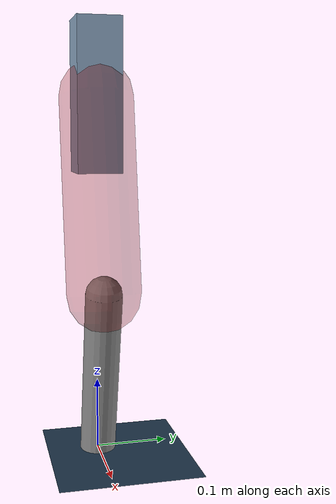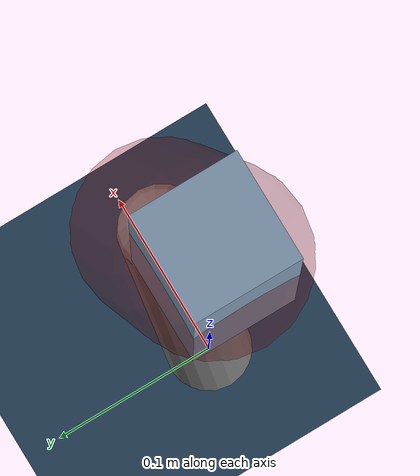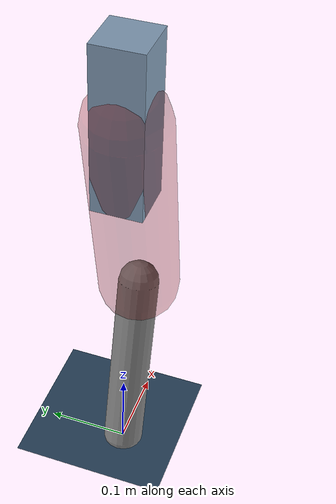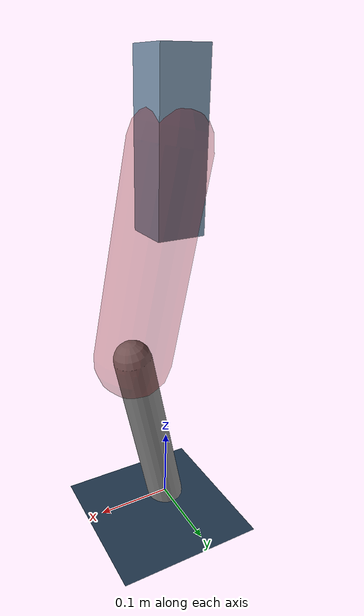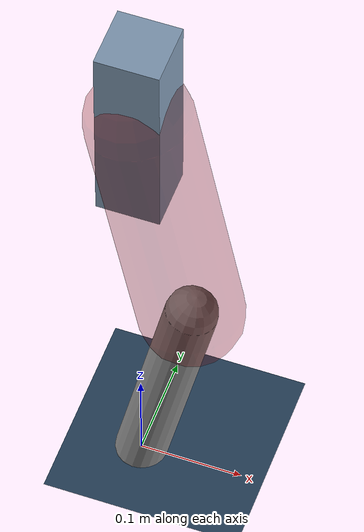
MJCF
<mujoco model="Hopper2D">
	<compiler inertiafromgeom="true" angle="radian" />
	<option timestep="0.001" integrator="implicit" cone="elliptic" solver="Newton" tolerance="1e-10" />

	<default>
		<geom contype="1" conaffinity="1" condim="3" friction="2 0.005 0.0001" solref="0.005 1" />
		<joint limited="true" damping="0.1" />
	</default>

	<asset>
		<texture name="skybox" type="skybox" builtin="gradient" rgb1=".4 .6 .8" rgb2="0 0 0" width="800" height="800" />
		<texture name="grid" type="2d" builtin="checker" rgb1=".1 .2 .3" rgb2=".2 .3 .4" width="300" height="300" mark="edge" markrgb=".2 .3 .4" />
		<material name="ground" texture="grid" texrepeat="1 1" texuniform="true" reflectance="0.1" />
		<material name="leg" rgba="0.5 0.6 0.7 1" />
	</asset>

	<worldbody>

		<geom name="floor" type="plane" size="5 5 0.25" material="ground" />

		<light directional="false" diffuse="0.8 0.8 0.8" specular="0.3 0.3 0.3" pos="0 0 2" dir="0 0 -1" />
		<light mode="targetbodycom" target="base" directional="false" diffuse="0.8 0.8 0.8" specular="0.3 0.3 0.3" pos="0 0 2" dir="0 0 -1" />

		<camera name="fixed" pos="0 -2 1" xyaxes="1 0 0 0 0 1" />
		<camera name="tracking" mode="trackcom" pos="0 -3 1" />

		<body name="root" pos="0 0 0.493182153181992">
			<joint name="slide_x" type="slide" axis="1 0 0" range="-100 100" />
			<joint name="slide_z" type="slide" axis="0 0 1" range="0 10" />

			<body name="base" pos="0 0 0">
				<geom name="torso" type="box" size="0.03 0.03 0.1" mass="1.065" material="leg" />

				<body name="link1" pos="0 0 0" euler="0 1.3800518276304459 0">
					<joint type="hinge" axis="0 -1 0" pos="0 0 0" name="hinge1" limited="true" range="-3.14 3.14" stiffness="0" damping="0.1" />
					<geom name="thigh" type="capsule" fromto="0 0 0 0.26296694411253696 0 0" size="0.05" rgba="0.5 0 0 0.3" mass="0.8902107491038498" />

					<body name="link2" pos="0.26296694411253696 0 0" euler="0 0.39981093990435856 0">
						<joint type="hinge" axis="0 -1 0" pos="0 0 0" name="hinge2" limited="true" range="-3.14 3.14" stiffness="0" damping="0.1" />
						<geom name="shank" type="capsule" fromto="0 0 0 0.24021520906945498 0 0" size="0.025" mass="0.434472167255564" />

					</body>
				</body>
			</body>
		</body>
	</worldbody>

	<actuator>
		<motor name="torque1" joint="hinge1" ctrlrange="-11.543783646610164 11.543783646610164" ctrllimited="true" gear="1" />
		<motor name="torque2" joint="hinge2" ctrlrange="-12.325286613111567 12.325286613111567" ctrllimited="true" gear="1" />
	</actuator>
</mujoco>
